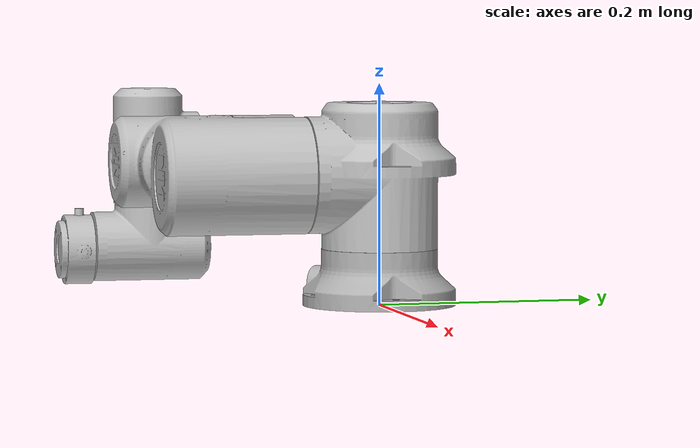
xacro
<?xml version="1.0"?>
<robot xmlns:xacro="http://www.ros.org/wiki/xacro" name="iimt3">
    <xacro:arg name="initial_positions_file" default="$(find iimt_ros2_description)/config/initial_positions.yaml" />

    <!-- Import iimt5 urdf file -->
    <xacro:include filename="$(find iimt_ros2_description)/urdf/iimt3.urdf" />

    <!-- Import control_xacro -->
    <xacro:include filename="iimt3.ros2_control.xacro" />

    <xacro:iimt3_ros2_control name="FakeSystem" initial_positions_file="$(arg initial_positions_file)"/>

</robot>

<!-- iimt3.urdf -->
<robot
  name="iimt3">
  <link
    name="base_link">
    <inertial>
      <origin
        xyz="-0.00114488660098564 -0.00112380986139073 0.0162533635658975"
        rpy="0 0 0" />
      <mass
        value="0.599172580593338" />
      <inertia
        ixx="0.00083289831139393"
        ixy="3.61202246017959E-05"
        ixz="1.56129019093849E-06"
        iyy="0.000833048088552861"
        iyz="1.72822157885521E-06"
        izz="0.00149072457496492" />
    </inertial>
    <visual>
      <origin
        xyz="0 0 0"
        rpy="0 0 0" />
      <geometry>
        <mesh
          filename="package://iimt_ros2_description/meshes/iimt3/visual/base_link.dae" />
      </geometry>
      <material
        name="">
        <color
          rgba="0.698039215686274 0.698039215686274 0.698039215686274 1" />
      </material>
    </visual>
    <collision>
      <origin
        xyz="0 0 0"
        rpy="0 0 0" />
      <geometry>
        <mesh
          filename="package://iimt_ros2_description/meshes/iimt3/collision/base_link.STL" />
      </geometry>
    </collision>
  </link>
  <link
    name="shoulder_link">
    <inertial>
      <origin
        xyz="4.77582933807681E-05 -0.0034575328903528 -0.0242553791285664"
        rpy="0 0 0" />
      <mass
        value="3.44075125581029" />
      <inertia
        ixx="0.00234756405516913"
        ixy="2.30946751936585E-06"
        ixz="-1.03191424507769E-05"
        iyy="0.00226307417952239"
        iyz="0.000153235167722978"
        izz="0.00344022291791415" />
    </inertial>
    <visual>
      <origin
        xyz="0 0 0"
        rpy="0 0 0" />
      <geometry>
        <mesh
          filename="package://iimt_ros2_description/meshes/iimt3/visual/shoulder_link.dae" />
      </geometry>
      <material
        name="">
        <color
          rgba="0.752941176470588 0.752941176470588 0.752941176470588 1" />
      </material>
    </visual>
    <collision>
      <origin
        xyz="0 0 0"
        rpy="0 0 0" />
      <geometry>
        <mesh
          filename="package://iimt_ros2_description/meshes/iimt3/collision/shoulder_link.STL" />
      </geometry>
    </collision>
  </link>
  <joint
    name="shoulder_joint"
    type="revolute">
    <origin
      xyz="0 0 0.118"
      rpy="0 0 0" />
    <parent
      link="base_link" />
    <child
      link="shoulder_link" />
    <axis
      xyz="0 0 1" />
    <limit
      lower="-6.2832"
      upper="6.2832"
      effort="95"
      velocity="3.14" />
  </joint>
  <link
    name="upper_arm_link">
    <inertial>
      <origin
        xyz="-0.0974686875310279 1.81199971482221E-05 0.118026401456409"
        rpy="0 0 0" />
      <mass
        value="5.87934275238358" />
      <inertia
        ixx="0.00427485752539079"
        ixy="3.74277592148204E-07"
        ixz="7.28779330209418E-05"
        iyy="0.00577734599208978"
        iyz="4.22840525648583E-06"
        izz="0.00723123782176771" />
    </inertial>
    <visual>
      <origin
        xyz="0 0 0"
        rpy="0 0 0" />
      <geometry>
        <mesh
          filename="package://iimt_ros2_description/meshes/iimt3/visual/upper_arm_link.dae" />
      </geometry>
      <material
        name="">
        <color
          rgba="0.752941176470588 0.752941176470588 0.752941176470588 1" />
      </material>
    </visual>
    <collision>
      <origin
        xyz="0 0 0"
        rpy="0 0 0" />
      <geometry>
        <mesh
          filename="package://iimt_ros2_description/meshes/iimt3/collision/upper_arm_link.STL" />
      </geometry>
    </collision>
  </link>
  <joint
    name="upper_arm_joint"
    type="revolute">
    <origin
      xyz="0 0 0"
      rpy="1.5708 0 0" />
    <parent
      link="shoulder_link" />
    <child
      link="upper_arm_link" />
    <axis
      xyz="0 0 1" />
    <limit
      lower="-2.6167"
      upper="2.6167"
      effort="95"
      velocity="3.14" />
  </joint>
  <link
    name="forearm_link">
    <inertial>
      <origin
        xyz="-0.160072720689279 -0.000450074941151429 0.0331313343865645"
        rpy="0 0 0" />
      <mass
        value="1.61411455863483" />
      <inertia
        ixx="0.00105610362663246"
        ixy="-1.9610761361323E-06"
        ixz="-0.00047408798718359"
        iyy="0.00380823776560526"
        iyz="-1.2709294419982E-06"
        izz="0.0039416280538603" />
    </inertial>
    <visual>
      <origin
        xyz="0 0 0"
        rpy="0 0 0" />
      <geometry>
        <mesh
          filename="package://iimt_ros2_description/meshes/iimt3/visual/fore_arm_link.dae" />
      </geometry>
      <material
        name="">
        <color
          rgba="0.698039215686274 0.698039215686274 0.698039215686274 1" />
      </material>
    </visual>
    <collision>
      <origin
        xyz="0 0 0"
        rpy="0 0 0" />
      <geometry>
        <mesh
          filename="package://iimt_ros2_description/meshes/iimt3/collision/fore_arm_link.STL" />
      </geometry>
    </collision>
  </link>
  <joint
    name="forearm_joint"
    type="revolute">
    <origin
      xyz="-0.273 0 0"
      rpy="0 0 0" />
    <parent
      link="upper_arm_link" />
    <child
      link="forearm_link" />
    <axis
      xyz="0 0 1" />
    <limit
      lower="-2.8783"
      upper="2.8783"
      effort="35"
      velocity="3.14" />
  </joint>
  <link
    name="wrist_1_link">
    <inertial>
      <origin
        xyz="-0.000738585431564132 -0.0124319222365512 -0.00250498807970474"
        rpy="0 0 0" />
      <mass
        value="0.982795368423135" />
      <inertia
        ixx="0.000435764398834042"
        ixy="1.55140622643867E-06"
        ixz="1.95732537712733E-06"
        iyy="0.000565040823505498"
        iyz="1.94515607288151E-05"
        izz="0.000429517694382352" />
    </inertial>
    <visual>
      <origin
        xyz="0 0 0"
        rpy="0 0 0" />
      <geometry>
        <mesh
          filename="package://iimt_ros2_description/meshes/iimt3/visual/wrist_1_link.dae" />
      </geometry>
      <material
        name="">
        <color
          rgba="0.752941176470588 0.752941176470588 0.752941176470588 1" />
      </material>
    </visual>
    <collision>
      <origin
        xyz="0 0 0"
        rpy="0 0 0" />
      <geometry>
        <mesh
          filename="package://iimt_ros2_description/meshes/iimt3/collision/wrist_1_link.STL" />
      </geometry>
    </collision>
  </link>
  <joint
    name="wrist_1_joint"
    type="revolute">
    <origin
      xyz="-0.225 0 0.1225"
      rpy="0 0 0" />
    <parent
      link="forearm_link" />
    <child
      link="wrist_1_link" />
    <axis
      xyz="0 0 1" />
    <limit
      lower="-3.0528"
      upper="3.0528"
      effort="17"
      velocity="3.14" />
  </joint>
  <link
    name="wrist_2_link">
    <inertial>
      <origin
        xyz="0.000738585440064943 0.0124319222746811 -0.00250498806633517"
        rpy="0 0 0" />
      <mass
        value="0.982795367220067" />
      <inertia
        ixx="0.000435764398731321"
        ixy="1.55140625947925E-06"
        ixz="-1.95732559840293E-06"
        iyy="0.000565040823219362"
        iyz="-1.94515607482804E-05"
        izz="0.000429517694177485" />
    </inertial>
    <visual>
      <origin
        xyz="0 0 0"
        rpy="0 0 0" />
      <geometry>
        <mesh
          filename="package://iimt_ros2_description/meshes/iimt3/visual/wrist_2_link.dae" />
      </geometry>
      <material
        name="">
        <color
          rgba="0.752941176470588 0.752941176470588 0.752941176470588 1" />
      </material>
    </visual>
    <collision>
      <origin
        xyz="0 0 0"
        rpy="0 0 0" />
      <geometry>
        <mesh
          filename="package://iimt_ros2_description/meshes/iimt3/collision/wrist_2_link.STL" />
      </geometry>
    </collision>
  </link>
  <joint
    name="wrist_2_joint"
    type="revolute">
    <origin
      xyz="0 -0.102 0"
      rpy="1.5708 0 0" />
    <parent
      link="wrist_1_link" />
    <child
      link="wrist_2_link" />
    <axis
      xyz="0 0 1" />
    <limit
      lower="-3.0528"
      upper="3.0528"
      effort="17"
      velocity="3.14" />
  </joint>
  <link
    name="wrist_3_link">
    <inertial>
      <origin
        xyz="8.61985766498208E-06 0.000181917876450079 -0.0129149559408659"
        rpy="0 0 0" />
      <mass
        value="0.161692321348108" />
      <inertia
        ixx="7.12791519797861E-05"
        ixy="6.84114525810483E-10"
        ixz="1.0986508715223E-10"
        iyy="7.31730956707241E-05"
        iyz="-2.3628165056841E-08"
        izz="0.000126702124638773" />
    </inertial>
    <visual>
      <origin
        xyz="0 0 0"
        rpy="0 0 0" />
      <geometry>
        <mesh
          filename="package://iimt_ros2_description/meshes/iimt3/visual/wrist_3_link.dae" />
      </geometry>
      <material
        name="">
        <color
          rgba="0.752941176470588 0.752941176470588 0.752941176470588 1" />
      </material>
    </visual>
    <collision>
      <origin
        xyz="0 0 0"
        rpy="0 0 0" />
      <geometry>
        <mesh
          filename="package://iimt_ros2_description/meshes/iimt3/collision/wrist_3_link.STL" />
      </geometry>
    </collision>
  </link>
  <joint
    name="wrist_3_joint"
    type="revolute">
    <origin
      xyz="0 0.089 0"
      rpy="-1.5708 0 0" />
    <parent
      link="wrist_2_link" />
    <child
      link="wrist_3_link" />
    <axis
      xyz="0 0 1" />
    <limit
      lower="-6.2832"
      upper="6.2832"
      effort="17"
      velocity="3.14" />
  </joint>
</robot>
